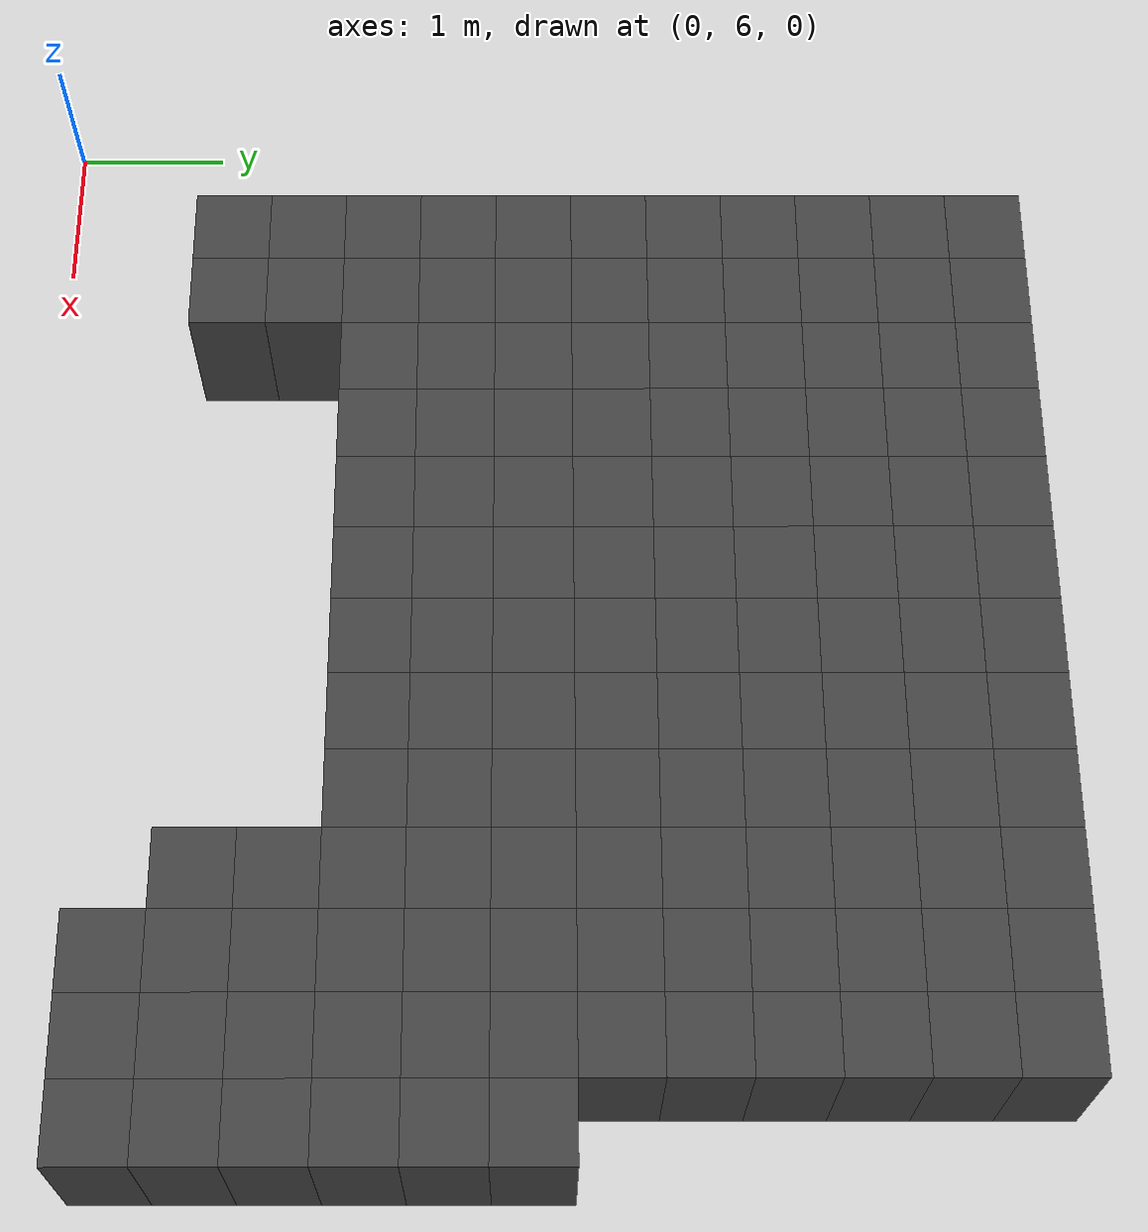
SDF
<sdf version="1.7">
 <world name="map_14495">
  <model name="ground_plane">
   <static>true</static>
   <link name="link">
    <collision name="collision">
     <geometry><plane><normal>0 0 1</normal><size>200 200</size></plane></geometry>
    </collision>
    <visual name="visual">
     <geometry><plane><normal>0 0 1</normal><size>200 200</size></plane></geometry>
     <material><ambient>0.8 0.8 0.8 1</ambient><diffuse>0.8 0.8 0.8 1</diffuse></material>
    </visual>
   </link>
  </model>
  <model name="maze_environment">
   <static>true</static>
   <link name="wall_27">
    <pose>1.250 12.250 0.500 0 0 0</pose>
    <collision name="col"><geometry><box><size>0.5 0.5 1.0</size></box></geometry></collision>
    <visual name="vis">
     <geometry><box><size>0.5 0.5 1.0</size></box></geometry>
     <material><ambient>0.15 0.15 0.15 1</ambient><diffuse>0.25 0.25 0.25 1</diffuse></material>
    </visual>
   </link>
   <link name="wall_28">
    <pose>1.750 12.250 0.500 0 0 0</pose>
    <collision name="col"><geometry><box><size>0.5 0.5 1.0</size></box></geometry></collision>
    <visual name="vis">
     <geometry><box><size>0.5 0.5 1.0</size></box></geometry>
     <material><ambient>0.15 0.15 0.15 1</ambient><diffuse>0.25 0.25 0.25 1</diffuse></material>
    </visual>
   </link>
   <link name="wall_29">
    <pose>2.250 12.250 0.500 0 0 0</pose>
    <collision name="col"><geometry><box><size>0.5 0.5 1.0</size></box></geometry></collision>
    <visual name="vis">
     <geometry><box><size>0.5 0.5 1.0</size></box></geometry>
     <material><ambient>0.15 0.15 0.15 1</ambient><diffuse>0.25 0.25 0.25 1</diffuse></material>
    </visual>
   </link>
   <link name="wall_30">
    <pose>2.750 12.250 0.500 0 0 0</pose>
    <collision name="col"><geometry><box><size>0.5 0.5 1.0</size></box></geometry></collision>
    <visual name="vis">
     <geometry><box><size>0.5 0.5 1.0</size></box></geometry>
     <material><ambient>0.15 0.15 0.15 1</ambient><diffuse>0.25 0.25 0.25 1</diffuse></material>
    </visual>
   </link>
   <link name="wall_31">
    <pose>3.250 12.250 0.500 0 0 0</pose>
    <collision name="col"><geometry><box><size>0.5 0.5 1.0</size></box></geometry></collision>
    <visual name="vis">
     <geometry><box><size>0.5 0.5 1.0</size></box></geometry>
     <material><ambient>0.15 0.15 0.15 1</ambient><diffuse>0.25 0.25 0.25 1</diffuse></material>
    </visual>
   </link>
   <link name="wall_32">
    <pose>3.750 12.250 0.500 0 0 0</pose>
    <collision name="col"><geometry><box><size>0.5 0.5 1.0</size></box></geometry></collision>
    <visual name="vis">
     <geometry><box><size>0.5 0.5 1.0</size></box></geometry>
     <material><ambient>0.15 0.15 0.15 1</ambient><diffuse>0.25 0.25 0.25 1</diffuse></material>
    </visual>
   </link>
   <link name="wall_33">
    <pose>4.250 12.250 0.500 0 0 0</pose>
    <collision name="col"><geometry><box><size>0.5 0.5 1.0</size></box></geometry></collision>
    <visual name="vis">
     <geometry><box><size>0.5 0.5 1.0</size></box></geometry>
     <material><ambient>0.15 0.15 0.15 1</ambient><diffuse>0.25 0.25 0.25 1</diffuse></material>
    </visual>
   </link>
   <link name="wall_34">
    <pose>4.750 12.250 0.500 0 0 0</pose>
    <collision name="col"><geometry><box><size>0.5 0.5 1.0</size></box></geometry></collision>
    <visual name="vis">
     <geometry><box><size>0.5 0.5 1.0</size></box></geometry>
     <material><ambient>0.15 0.15 0.15 1</ambient><diffuse>0.25 0.25 0.25 1</diffuse></material>
    </visual>
   </link>
   <link name="wall_35">
    <pose>5.250 12.250 0.500 0 0 0</pose>
    <collision name="col"><geometry><box><size>0.5 0.5 1.0</size></box></geometry></collision>
    <visual name="vis">
     <geometry><box><size>0.5 0.5 1.0</size></box></geometry>
     <material><ambient>0.15 0.15 0.15 1</ambient><diffuse>0.25 0.25 0.25 1</diffuse></material>
    </visual>
   </link>
   <link name="wall_36">
    <pose>5.750 12.250 0.500 0 0 0</pose>
    <collision name="col"><geometry><box><size>0.5 0.5 1.0</size></box></geometry></collision>
    <visual name="vis">
     <geometry><box><size>0.5 0.5 1.0</size></box></geometry>
     <material><ambient>0.15 0.15 0.15 1</ambient><diffuse>0.25 0.25 0.25 1</diffuse></material>
    </visual>
   </link>
   <link name="wall_37">
    <pose>6.250 12.250 0.500 0 0 0</pose>
    <collision name="col"><geometry><box><size>0.5 0.5 1.0</size></box></geometry></collision>
    <visual name="vis">
     <geometry><box><size>0.5 0.5 1.0</size></box></geometry>
     <material><ambient>0.15 0.15 0.15 1</ambient><diffuse>0.25 0.25 0.25 1</diffuse></material>
    </visual>
   </link>
   <link name="wall_38">
    <pose>6.750 12.250 0.500 0 0 0</pose>
    <collision name="col"><geometry><box><size>0.5 0.5 1.0</size></box></geometry></collision>
    <visual name="vis">
     <geometry><box><size>0.5 0.5 1.0</size></box></geometry>
     <material><ambient>0.15 0.15 0.15 1</ambient><diffuse>0.25 0.25 0.25 1</diffuse></material>
    </visual>
   </link>
   <link name="wall_74">
    <pose>1.250 11.750 0.500 0 0 0</pose>
    <collision name="col"><geometry><box><size>0.5 0.5 1.0</size></box></geometry></collision>
    <visual name="vis">
     <geometry><box><size>0.5 0.5 1.0</size></box></geometry>
     <material><ambient>0.15 0.15 0.15 1</ambient><diffuse>0.25 0.25 0.25 1</diffuse></material>
    </visual>
   </link>
   <link name="wall_75">
    <pose>1.750 11.750 0.500 0 0 0</pose>
    <collision name="col"><geometry><box><size>0.5 0.5 1.0</size></box></geometry></collision>
    <visual name="vis">
     <geometry><box><size>0.5 0.5 1.0</size></box></geometry>
     <material><ambient>0.15 0.15 0.15 1</ambient><diffuse>0.25 0.25 0.25 1</diffuse></material>
    </visual>
   </link>
   <link name="wall_76">
    <pose>2.250 11.750 0.500 0 0 0</pose>
    <collision name="col"><geometry><box><size>0.5 0.5 1.0</size></box></geometry></collision>
    <visual name="vis">
     <geometry><box><size>0.5 0.5 1.0</size></box></geometry>
     <material><ambient>0.15 0.15 0.15 1</ambient><diffuse>0.25 0.25 0.25 1</diffuse></material>
    </visual>
   </link>
   <link name="wall_77">
    <pose>2.750 11.750 0.500 0 0 0</pose>
    <collision name="col"><geometry><box><size>0.5 0.5 1.0</size></box></geometry></collision>
    <visual name="vis">
     <geometry><box><size>0.5 0.5 1.0</size></box></geometry>
     <material><ambient>0.15 0.15 0.15 1</ambient><diffuse>0.25 0.25 0.25 1</diffuse></material>
    </visual>
   </link>
   <link name="wall_78">
    <pose>3.250 11.750 0.500 0 0 0</pose>
    <collision name="col"><geometry><box><size>0.5 0.5 1.0</size></box></geometry></collision>
    <visual name="vis">
     <geometry><box><size>0.5 0.5 1.0</size></box></geometry>
     <material><ambient>0.15 0.15 0.15 1</ambient><diffuse>0.25 0.25 0.25 1</diffuse></material>
    </visual>
   </link>
   <link name="wall_79">
    <pose>3.750 11.750 0.500 0 0 0</pose>
    <collision name="col"><geometry><box><size>0.5 0.5 1.0</size></box></geometry></collision>
    <visual name="vis">
     <geometry><box><size>0.5 0.5 1.0</size></box></geometry>
     <material><ambient>0.15 0.15 0.15 1</ambient><diffuse>0.25 0.25 0.25 1</diffuse></material>
    </visual>
   </link>
   <link name="wall_80">
    <pose>4.250 11.750 0.500 0 0 0</pose>
    <collision name="col"><geometry><box><size>0.5 0.5 1.0</size></box></geometry></collision>
    <visual name="vis">
     <geometry><box><size>0.5 0.5 1.0</size></box></geometry>
     <material><ambient>0.15 0.15 0.15 1</ambient><diffuse>0.25 0.25 0.25 1</diffuse></material>
    </visual>
   </link>
   <link name="wall_81">
    <pose>4.750 11.750 0.500 0 0 0</pose>
    <collision name="col"><geometry><box><size>0.5 0.5 1.0</size></box></geometry></collision>
    <visual name="vis">
     <geometry><box><size>0.5 0.5 1.0</size></box></geometry>
     <material><ambient>0.15 0.15 0.15 1</ambient><diffuse>0.25 0.25 0.25 1</diffuse></material>
    </visual>
   </link>
   <link name="wall_82">
    <pose>5.250 11.750 0.500 0 0 0</pose>
    <collision name="col"><geometry><box><size>0.5 0.5 1.0</size></box></geometry></collision>
    <visual name="vis">
     <geometry><box><size>0.5 0.5 1.0</size></box></geometry>
     <material><ambient>0.15 0.15 0.15 1</ambient><diffuse>0.25 0.25 0.25 1</diffuse></material>
    </visual>
   </link>
   <link name="wall_83">
    <pose>5.750 11.750 0.500 0 0 0</pose>
    <collision name="col"><geometry><box><size>0.5 0.5 1.0</size></box></geometry></collision>
    <visual name="vis">
     <geometry><box><size>0.5 0.5 1.0</size></box></geometry>
     <material><ambient>0.15 0.15 0.15 1</ambient><diffuse>0.25 0.25 0.25 1</diffuse></material>
    </visual>
   </link>
   <link name="wall_84">
    <pose>6.250 11.750 0.500 0 0 0</pose>
    <collision name="col"><geometry><box><size>0.5 0.5 1.0</size></box></geometry></collision>
    <visual name="vis">
     <geometry><box><size>0.5 0.5 1.0</size></box></geometry>
     <material><ambient>0.15 0.15 0.15 1</ambient><diffuse>0.25 0.25 0.25 1</diffuse></material>
    </visual>
   </link>
   <link name="wall_85">
    <pose>6.750 11.750 0.500 0 0 0</pose>
    <collision name="col"><geometry><box><size>0.5 0.5 1.0</size></box></geometry></collision>
    <visual name="vis">
     <geometry><box><size>0.5 0.5 1.0</size></box></geometry>
     <material><ambient>0.15 0.15 0.15 1</ambient><diffuse>0.25 0.25 0.25 1</diffuse></material>
    </visual>
   </link>
   <link name="wall_121">
    <pose>1.250 11.250 0.500 0 0 0</pose>
    <collision name="col"><geometry><box><size>0.5 0.5 1.0</size></box></geometry></collision>
    <visual name="vis">
     <geometry><box><size>0.5 0.5 1.0</size></box></geometry>
     <material><ambient>0.15 0.15 0.15 1</ambient><diffuse>0.25 0.25 0.25 1</diffuse></material>
    </visual>
   </link>
   <link name="wall_122">
    <pose>1.750 11.250 0.500 0 0 0</pose>
    <collision name="col"><geometry><box><size>0.5 0.5 1.0</size></box></geometry></collision>
    <visual name="vis">
     <geometry><box><size>0.5 0.5 1.0</size></box></geometry>
     <material><ambient>0.15 0.15 0.15 1</ambient><diffuse>0.25 0.25 0.25 1</diffuse></material>
    </visual>
   </link>
   <link name="wall_123">
    <pose>2.250 11.250 0.500 0 0 0</pose>
    <collision name="col"><geometry><box><size>0.5 0.5 1.0</size></box></geometry></collision>
    <visual name="vis">
     <geometry><box><size>0.5 0.5 1.0</size></box></geometry>
     <material><ambient>0.15 0.15 0.15 1</ambient><diffuse>0.25 0.25 0.25 1</diffuse></material>
    </visual>
   </link>
   <link name="wall_124">
    <pose>2.750 11.250 0.500 0 0 0</pose>
    <collision name="col"><geometry><box><size>0.5 0.5 1.0</size></box></geometry></collision>
    <visual name="vis">
     <geometry><box><size>0.5 0.5 1.0</size></box></geometry>
     <material><ambient>0.15 0.15 0.15 1</ambient><diffuse>0.25 0.25 0.25 1</diffuse></material>
    </visual>
   </link>
   <link name="wall_125">
    <pose>3.250 11.250 0.500 0 0 0</pose>
    <collision name="col"><geometry><box><size>0.5 0.5 1.0</size></box></geometry></collision>
    <visual name="vis">
     <geometry><box><size>0.5 0.5 1.0</size></box></geometry>
     <material><ambient>0.15 0.15 0.15 1</ambient><diffuse>0.25 0.25 0.25 1</diffuse></material>
    </visual>
   </link>
   <link name="wall_126">
    <pose>3.750 11.250 0.500 0 0 0</pose>
    <collision name="col"><geometry><box><size>0.5 0.5 1.0</size></box></geometry></collision>
    <visual name="vis">
     <geometry><box><size>0.5 0.5 1.0</size></box></geometry>
     <material><ambient>0.15 0.15 0.15 1</ambient><diffuse>0.25 0.25 0.25 1</diffuse></material>
    </visual>
   </link>
   <link name="wall_127">
    <pose>4.250 11.250 0.500 0 0 0</pose>
    <collision name="col"><geometry><box><size>0.5 0.5 1.0</size></box></geometry></collision>
    <visual name="vis">
     <geometry><box><size>0.5 0.5 1.0</size></box></geometry>
     <material><ambient>0.15 0.15 0.15 1</ambient><diffuse>0.25 0.25 0.25 1</diffuse></material>
    </visual>
   </link>
   <link name="wall_128">
    <pose>4.750 11.250 0.500 0 0 0</pose>
    <collision name="col"><geometry><box><size>0.5 0.5 1.0</size></box></geometry></collision>
    <visual name="vis">
     <geometry><box><size>0.5 0.5 1.0</size></box></geometry>
     <material><ambient>0.15 0.15 0.15 1</ambient><diffuse>0.25 0.25 0.25 1</diffuse></material>
    </visual>
   </link>
   <link name="wall_129">
    <pose>5.250 11.250 0.500 0 0 0</pose>
    <collision name="col"><geometry><box><size>0.5 0.5 1.0</size></box></geometry></collision>
    <visual name="vis">
     <geometry><box><size>0.5 0.5 1.0</size></box></geometry>
     <material><ambient>0.15 0.15 0.15 1</ambient><diffuse>0.25 0.25 0.25 1</diffuse></material>
    </visual>
   </link>
   <link name="wall_130">
    <pose>5.750 11.250 0.500 0 0 0</pose>
    <collision name="col"><geometry><box><size>0.5 0.5 1.0</size></box></geometry></collision>
    <visual name="vis">
     <geometry><box><size>0.5 0.5 1.0</size></box></geometry>
     <material><ambient>0.15 0.15 0.15 1</ambient><diffuse>0.25 0.25 0.25 1</diffuse></material>
    </visual>
   </link>
   <link name="wall_131">
    <pose>6.250 11.250 0.500 0 0 0</pose>
    <collision name="col"><geometry><box><size>0.5 0.5 1.0</size></box></geometry></collision>
    <visual name="vis">
     <geometry><box><size>0.5 0.5 1.0</size></box></geometry>
     <material><ambient>0.15 0.15 0.15 1</ambient><diffuse>0.25 0.25 0.25 1</diffuse></material>
    </visual>
   </link>
   <link name="wall_132">
    <pose>6.750 11.250 0.500 0 0 0</pose>
    <collision name="col"><geometry><box><size>0.5 0.5 1.0</size></box></geometry></collision>
    <visual name="vis">
     <geometry><box><size>0.5 0.5 1.0</size></box></geometry>
     <material><ambient>0.15 0.15 0.15 1</ambient><diffuse>0.25 0.25 0.25 1</diffuse></material>
    </visual>
   </link>
   <link name="wall_160">
    <pose>1.250 10.750 0.500 0 0 0</pose>
    <collision name="col"><geometry><box><size>0.5 0.5 1.0</size></box></geometry></collision>
    <visual name="vis">
     <geometry><box><size>0.5 0.5 1.0</size></box></geometry>
     <material><ambient>0.15 0.15 0.15 1</ambient><diffuse>0.25 0.25 0.25 1</diffuse></material>
    </visual>
   </link>
   <link name="wall_161">
    <pose>1.750 10.750 0.500 0 0 0</pose>
    <collision name="col"><geometry><box><size>0.5 0.5 1.0</size></box></geometry></collision>
    <visual name="vis">
     <geometry><box><size>0.5 0.5 1.0</size></box></geometry>
     <material><ambient>0.15 0.15 0.15 1</ambient><diffuse>0.25 0.25 0.25 1</diffuse></material>
    </visual>
   </link>
   <link name="wall_162">
    <pose>2.250 10.750 0.500 0 0 0</pose>
    <collision name="col"><geometry><box><size>0.5 0.5 1.0</size></box></geometry></collision>
    <visual name="vis">
     <geometry><box><size>0.5 0.5 1.0</size></box></geometry>
     <material><ambient>0.15 0.15 0.15 1</ambient><diffuse>0.25 0.25 0.25 1</diffuse></material>
    </visual>
   </link>
   <link name="wall_163">
    <pose>2.750 10.750 0.500 0 0 0</pose>
    <collision name="col"><geometry><box><size>0.5 0.5 1.0</size></box></geometry></collision>
    <visual name="vis">
     <geometry><box><size>0.5 0.5 1.0</size></box></geometry>
     <material><ambient>0.15 0.15 0.15 1</ambient><diffuse>0.25 0.25 0.25 1</diffuse></material>
    </visual>
   </link>
   <link name="wall_164">
    <pose>3.250 10.750 0.500 0 0 0</pose>
    <collision name="col"><geometry><box><size>0.5 0.5 1.0</size></box></geometry></collision>
    <visual name="vis">
     <geometry><box><size>0.5 0.5 1.0</size></box></geometry>
     <material><ambient>0.15 0.15 0.15 1</ambient><diffuse>0.25 0.25 0.25 1</diffuse></material>
    </visual>
   </link>
   <link name="wall_165">
    <pose>3.750 10.750 0.500 0 0 0</pose>
    <collision name="col"><geometry><box><size>0.5 0.5 1.0</size></box></geometry></collision>
    <visual name="vis">
     <geometry><box><size>0.5 0.5 1.0</size></box></geometry>
     <material><ambient>0.15 0.15 0.15 1</ambient><diffuse>0.25 0.25 0.25 1</diffuse></material>
    </visual>
   </link>
   <link name="wall_166">
    <pose>4.250 10.750 0.500 0 0 0</pose>
    <collision name="col"><geometry><box><size>0.5 0.5 1.0</size></box></geometry></collision>
    <visual name="vis">
     <geometry><box><size>0.5 0.5 1.0</size></box></geometry>
     <material><ambient>0.15 0.15 0.15 1</ambient><diffuse>0.25 0.25 0.25 1</diffuse></material>
    </visual>
   </link>
   <link name="wall_167">
    <pose>4.750 10.750 0.500 0 0 0</pose>
    <collision name="col"><geometry><box><size>0.5 0.5 1.0</size></box></geometry></collision>
    <visual name="vis">
     <geometry><box><size>0.5 0.5 1.0</size></box></geometry>
     <material><ambient>0.15 0.15 0.15 1</ambient><diffuse>0.25 0.25 0.25 1</diffuse></material>
    </visual>
   </link>
   <link name="wall_168">
    <pose>5.250 10.750 0.500 0 0 0</pose>
    <collision name="col"><geometry><box><size>0.5 0.5 1.0</size></box></geometry></collision>
    <visual name="vis">
     <geometry><box><size>0.5 0.5 1.0</size></box></geometry>
     <material><ambient>0.15 0.15 0.15 1</ambient><diffuse>0.25 0.25 0.25 1</diffuse></material>
    </visual>
   </link>
   <link name="wall_169">
    <pose>5.750 10.750 0.500 0 0 0</pose>
    <collision name="col"><geometry><box><size>0.5 0.5 1.0</size></box></geometry></collision>
    <visual name="vis">
     <geometry><box><size>0.5 0.5 1.0</size></box></geometry>
     <material><ambient>0.15 0.15 0.15 1</ambient><diffuse>0.25 0.25 0.25 1</diffuse></material>
    </visual>
   </link>
   <link name="wall_170">
    <pose>6.250 10.750 0.500 0 0 0</pose>
    <collision name="col"><geometry><box><size>0.5 0.5 1.0</size></box></geometry></collision>
    <visual name="vis">
     <geometry><box><size>0.5 0.5 1.0</size></box></geometry>
     <material><ambient>0.15 0.15 0.15 1</ambient><diffuse>0.25 0.25 0.25 1</diffuse></material>
    </visual>
   </link>
   <link name="wall_171">
    <pose>6.750 10.750 0.500 0 0 0</pose>
    <collision name="col"><geometry><box><size>0.5 0.5 1.0</size></box></geometry></collision>
    <visual name="vis">
     <geometry><box><size>0.5 0.5 1.0</size></box></geometry>
     <material><ambient>0.15 0.15 0.15 1</ambient><diffuse>0.25 0.25 0.25 1</diffuse></material>
    </visual>
   </link>
   <link name="wall_201">
    <pose>1.250 10.250 0.500 0 0 0</pose>
    <collision name="col"><geometry><box><size>0.5 0.5 1.0</size></box></geometry></collision>
    <visual name="vis">
     <geometry><box><size>0.5 0.5 1.0</size></box></geometry>
     <material><ambient>0.15 0.15 0.15 1</ambient><diffuse>0.25 0.25 0.25 1</diffuse></material>
    </visual>
   </link>
   <link name="wall_202">
    <pose>1.750 10.250 0.500 0 0 0</pose>
    <collision name="col"><geometry><box><size>0.5 0.5 1.0</size></box></geometry></collision>
    <visual name="vis">
     <geometry><box><size>0.5 0.5 1.0</size></box></geometry>
     <material><ambient>0.15 0.15 0.15 1</ambient><diffuse>0.25 0.25 0.25 1</diffuse></material>
    </visual>
   </link>
   <link name="wall_203">
    <pose>2.250 10.250 0.500 0 0 0</pose>
    <collision name="col"><geometry><box><size>0.5 0.5 1.0</size></box></geometry></collision>
    <visual name="vis">
     <geometry><box><size>0.5 0.5 1.0</size></box></geometry>
     <material><ambient>0.15 0.15 0.15 1</ambient><diffuse>0.25 0.25 0.25 1</diffuse></material>
    </visual>
   </link>
   <link name="wall_204">
    <pose>2.750 10.250 0.500 0 0 0</pose>
    <collision name="col"><geometry><box><size>0.5 0.5 1.0</size></box></geometry></collision>
    <visual name="vis">
     <geometry><box><size>0.5 0.5 1.0</size></box></geometry>
     <material><ambient>0.15 0.15 0.15 1</ambient><diffuse>0.25 0.25 0.25 1</diffuse></material>
    </visual>
   </link>
   <link name="wall_205">
    <pose>3.250 10.250 0.500 0 0 0</pose>
    <collision name="col"><geometry><box><size>0.5 0.5 1.0</size></box></geometry></collision>
    <visual name="vis">
     <geometry><box><size>0.5 0.5 1.0</size></box></geometry>
     <material><ambient>0.15 0.15 0.15 1</ambient><diffuse>0.25 0.25 0.25 1</diffuse></material>
    </visual>
   </link>
   <link name="wall_206">
    <pose>3.750 10.250 0.500 0 0 0</pose>
    <collision name="col"><geometry><box><size>0.5 0.5 1.0</size></box></geometry></collision>
    <visual name="vis">
     <geometry><box><size>0.5 0.5 1.0</size></box></geometry>
     <material><ambient>0.15 0.15 0.15 1</ambient><diffuse>0.25 0.25 0.25 1</diffuse></material>
    </visual>
   </link>
   <link name="wall_207">
    <pose>4.250 10.250 0.500 0 0 0</pose>
    <collision name="col"><geometry><box><size>0.5 0.5 1.0</size></box></geometry></collision>
    <visual name="vis">
     <geometry><box><size>0.5 0.5 1.0</size></box></geometry>
     <material><ambient>0.15 0.15 0.15 1</ambient><diffuse>0.25 0.25 0.25 1</diffuse></material>
    </visual>
   </link>
   <link name="wall_208">
    <pose>4.750 10.250 0.500 0 0 0</pose>
    <collision name="col"><geometry><box><size>0.5 0.5 1.0</size></box></geometry></collision>
    <visual name="vis">
     <geometry><box><size>0.5 0.5 1.0</size></box></geometry>
     <material><ambient>0.15 0.15 0.15 1</ambient><diffuse>0.25 0.25 0.25 1</diffuse></material>
    </visual>
   </link>
   <link name="wall_209">
    <pose>5.250 10.250 0.500 0 0 0</pose>
    <collision name="col"><geometry><box><size>0.5 0.5 1.0</size></box></geometry></collision>
    <visual name="vis">
     <geometry><box><size>0.5 0.5 1.0</size></box></geometry>
     <material><ambient>0.15 0.15 0.15 1</ambient><diffuse>0.25 0.25 0.25 1</diffuse></material>
    </visual>
   </link>
   <link name="wall_210">
    <pose>5.750 10.250 0.500 0 0 0</pose>
    <collision name="col"><geometry><box><size>0.5 0.5 1.0</size></box></geometry></collision>
    <visual name="vis">
     <geometry><box><size>0.5 0.5 1.0</size></box></geometry>
     <material><ambient>0.15 0.15 0.15 1</ambient><diffuse>0.25 0.25 0.25 1</diffuse></material>
    </visual>
   </link>
   <link name="wall_211">
    <pose>6.250 10.250 0.500 0 0 0</pose>
    <collision name="col"><geometry><box><size>0.5 0.5 1.0</size></box></geometry></collision>
    <visual name="vis">
     <geometry><box><size>0.5 0.5 1.0</size></box></geometry>
     <material><ambient>0.15 0.15 0.15 1</ambient><diffuse>0.25 0.25 0.25 1</diffuse></material>
    </visual>
   </link>
   <link name="wall_212">
    <pose>6.750 10.250 0.500 0 0 0</pose>
    <collision name="col"><geometry><box><size>0.5 0.5 1.0</size></box></geometry></collision>
    <visual name="vis">
     <geometry><box><size>0.5 0.5 1.0</size></box></geometry>
     <material><ambient>0.15 0.15 0.15 1</ambient><diffuse>0.25 0.25 0.25 1</diffuse></material>
    </visual>
   </link>
   <link name="wall_242">
    <pose>1.250 9.750 0.500 0 0 0</pose>
    <collision name="col"><geometry><box><size>0.5 0.5 1.0</size></box></geometry></collision>
    <visual name="vis">
     <geometry><box><size>0.5 0.5 1.0</size></box></geometry>
     <material><ambient>0.15 0.15 0.15 1</ambient><diffuse>0.25 0.25 0.25 1</diffuse></material>
    </visual>
   </link>
   <link name="wall_243">
    <pose>1.750 9.750 0.500 0 0 0</pose>
    <collision name="col"><geometry><box><size>0.5 0.5 1.0</size></box></geometry></collision>
    <visual name="vis">
     <geometry><box><size>0.5 0.5 1.0</size></box></geometry>
     <material><ambient>0.15 0.15 0.15 1</ambient><diffuse>0.25 0.25 0.25 1</diffuse></material>
    </visual>
   </link>
   <link name="wall_244">
    <pose>2.250 9.750 0.500 0 0 0</pose>
    <collision name="col"><geometry><box><size>0.5 0.5 1.0</size></box></geometry></collision>
    <visual name="vis">
     <geometry><box><size>0.5 0.5 1.0</size></box></geometry>
     <material><ambient>0.15 0.15 0.15 1</ambient><diffuse>0.25 0.25 0.25 1</diffuse></material>
    </visual>
   </link>
   <link name="wall_245">
    <pose>2.750 9.750 0.500 0 0 0</pose>
    <collision name="col"><geometry><box><size>0.5 0.5 1.0</size></box></geometry></collision>
    <visual name="vis">
     <geometry><box><size>0.5 0.5 1.0</size></box></geometry>
     <material><ambient>0.15 0.15 0.15 1</ambient><diffuse>0.25 0.25 0.25 1</diffuse></material>
    </visual>
   </link>
   <link name="wall_246">
    <pose>3.250 9.750 0.500 0 0 0</pose>
    <collision name="col"><geometry><box><size>0.5 0.5 1.0</size></box></geometry></collision>
    <visual name="vis">
     <geometry><box><size>0.5 0.5 1.0</size></box></geometry>
     <material><ambient>0.15 0.15 0.15 1</ambient><diffuse>0.25 0.25 0.25 1</diffuse></material>
    </visual>
   </link>
   <link name="wall_247">
    <pose>3.750 9.750 0.500 0 0 0</pose>
    <collision name="col"><geometry><box><size>0.5 0.5 1.0</size></box></geometry></collision>
    <visual name="vis">
     <geometry><box><size>0.5 0.5 1.0</size></box></geometry>
     <material><ambient>0.15 0.15 0.15 1</ambient><diffuse>0.25 0.25 0.25 1</diffuse></material>
    </visual>
   </link>
   <link name="wall_248">
    <pose>4.250 9.750 0.500 0 0 0</pose>
    <collision name="col"><geometry><box><size>0.5 0.5 1.0</size></box></geometry></collision>
    <visual name="vis">
     <geometry><box><size>0.5 0.5 1.0</size></box></geometry>
     <material><ambient>0.15 0.15 0.15 1</ambient><diffuse>0.25 0.25 0.25 1</diffuse></material>
    </visual>
   </link>
   <link name="wall_249">
    <pose>4.750 9.750 0.500 0 0 0</pose>
    <collision name="col"><geometry><box><size>0.5 0.5 1.0</size></box></geometry></collision>
    <visual name="vis">
     <geometry><box><size>0.5 0.5 1.0</size></box></geometry>
     <material><ambient>0.15 0.15 0.15 1</ambient><diffuse>0.25 0.25 0.25 1</diffuse></material>
    </visual>
   </link>
   <link name="wall_250">
    <pose>5.250 9.750 0.500 0 0 0</pose>
    <collision name="col"><geometry><box><size>0.5 0.5 1.0</size></box></geometry></collision>
    <visual name="vis">
     <geometry><box><size>0.5 0.5 1.0</size></box></geometry>
     <material><ambient>0.15 0.15 0.15 1</ambient><diffuse>0.25 0.25 0.25 1</diffuse></material>
    </visual>
   </link>
   <link name="wall_251">
    <pose>5.750 9.750 0.500 0 0 0</pose>
    <collision name="col"><geometry><box><size>0.5 0.5 1.0</size></box></geometry></collision>
    <visual name="vis">
     <geometry><box><size>0.5 0.5 1.0</size></box></geometry>
     <material><ambient>0.15 0.15 0.15 1</ambient><diffuse>0.25 0.25 0.25 1</diffuse></material>
    </visual>
   </link>
   <link name="wall_252">
    <pose>6.250 9.750 0.500 0 0 0</pose>
    <collision name="col"><geometry><box><size>0.5 0.5 1.0</size></box></geometry></collision>
    <visual name="vis">
     <geometry><box><size>0.5 0.5 1.0</size></box></geometry>
     <material><ambient>0.15 0.15 0.15 1</ambient><diffuse>0.25 0.25 0.25 1</diffuse></material>
    </visual>
   </link>
   <link name="wall_253">
    <pose>6.750 9.750 0.500 0 0 0</pose>
    <collision name="col"><geometry><box><size>0.5 0.5 1.0</size></box></geometry></collision>
    <visual name="vis">
     <geometry><box><size>0.5 0.5 1.0</size></box></geometry>
     <material><ambient>0.15 0.15 0.15 1</ambient><diffuse>0.25 0.25 0.25 1</diffuse></material>
    </visual>
   </link>
   <link name="wall_279">
    <pose>1.250 9.250 0.500 0 0 0</pose>
    <collision name="col"><geometry><box><size>0.5 0.5 1.0</size></box></geometry></collision>
    <visual name="vis">
     <geometry><box><size>0.5 0.5 1.0</size></box></geometry>
     <material><ambient>0.15 0.15 0.15 1</ambient><diffuse>0.25 0.25 0.25 1</diffuse></material>
    </visual>
   </link>
   <link name="wall_280">
    <pose>1.750 9.250 0.500 0 0 0</pose>
    <collision name="col"><geometry><box><size>0.5 0.5 1.0</size></box></geometry></collision>
    <visual name="vis">
     <geometry><box><size>0.5 0.5 1.0</size></box></geometry>
     <material><ambient>0.15 0.15 0.15 1</ambient><diffuse>0.25 0.25 0.25 1</diffuse></material>
    </visual>
   </link>
   <link name="wall_281">
    <pose>2.250 9.250 0.500 0 0 0</pose>
    <collision name="col"><geometry><box><size>0.5 0.5 1.0</size></box></geometry></collision>
    <visual name="vis">
     <geometry><box><size>0.5 0.5 1.0</size></box></geometry>
     <material><ambient>0.15 0.15 0.15 1</ambient><diffuse>0.25 0.25 0.25 1</diffuse></material>
    </visual>
   </link>
   <link name="wall_282">
    <pose>2.750 9.250 0.500 0 0 0</pose>
    <collision name="col"><geometry><box><size>0.5 0.5 1.0</size></box></geometry></collision>
    <visual name="vis">
     <geometry><box><size>0.5 0.5 1.0</size></box></geometry>
     <material><ambient>0.15 0.15 0.15 1</ambient><diffuse>0.25 0.25 0.25 1</diffuse></material>
    </visual>
   </link>
   <link name="wall_283">
    <pose>3.250 9.250 0.500 0 0 0</pose>
    <collision name="col"><geometry><box><size>0.5 0.5 1.0</size></box></geometry></collision>
    <visual name="vis">
     <geometry><box><size>0.5 0.5 1.0</size></box></geometry>
     <material><ambient>0.15 0.15 0.15 1</ambient><diffuse>0.25 0.25 0.25 1</diffuse></material>
    </visual>
   </link>
   <link name="wall_284">
    <pose>3.750 9.250 0.500 0 0 0</pose>
    <collision name="col"><geometry><box><size>0.5 0.5 1.0</size></box></geometry></collision>
    <visual name="vis">
     <geometry><box><size>0.5 0.5 1.0</size></box></geometry>
     <material><ambient>0.15 0.15 0.15 1</ambient><diffuse>0.25 0.25 0.25 1</diffuse></material>
    </visual>
   </link>
   <link name="wall_285">
    <pose>4.250 9.250 0.500 0 0 0</pose>
    <collision name="col"><geometry><box><size>0.5 0.5 1.0</size></box></geometry></collision>
    <visual name="vis">
     <geometry><box><size>0.5 0.5 1.0</size></box></geometry>
     <material><ambient>0.15 0.15 0.15 1</ambient><diffuse>0.25 0.25 0.25 1</diffuse></material>
    </visual>
   </link>
   <link name="wall_286">
    <pose>4.750 9.250 0.500 0 0 0</pose>
    <collision name="col"><geometry><box><size>0.5 0.5 1.0</size></box></geometry></collision>
    <visual name="vis">
     <geometry><box><size>0.5 0.5 1.0</size></box></geometry>
     <material><ambient>0.15 0.15 0.15 1</ambient><diffuse>0.25 0.25 0.25 1</diffuse></material>
    </visual>
   </link>
   <link name="wall_287">
    <pose>5.250 9.250 0.500 0 0 0</pose>
    <collision name="col"><geometry><box><size>0.5 0.5 1.0</size></box></geometry></collision>
    <visual name="vis">
     <geometry><box><size>0.5 0.5 1.0</size></box></geometry>
     <material><ambient>0.15 0.15 0.15 1</ambient><diffuse>0.25 0.25 0.25 1</diffuse></material>
    </visual>
   </link>
   <link name="wall_288">
    <pose>5.750 9.250 0.500 0 0 0</pose>
    <collision name="col"><geometry><box><size>0.5 0.5 1.0</size></box></geometry></collision>
    <visual name="vis">
     <geometry><box><size>0.5 0.5 1.0</size></box></geometry>
     <material><ambient>0.15 0.15 0.15 1</ambient><diffuse>0.25 0.25 0.25 1</diffuse></material>
    </visual>
   </link>
   <link name="wall_289">
    <pose>6.250 9.250 0.500 0 0 0</pose>
    <collision name="col"><geometry><box><size>0.5 0.5 1.0</size></box></geometry></collision>
    <visual name="vis">
     <geometry><box><size>0.5 0.5 1.0</size></box></geometry>
     <material><ambient>0.15 0.15 0.15 1</ambient><diffuse>0.25 0.25 0.25 1</diffuse></material>
    </visual>
   </link>
   <link name="wall_290">
    <pose>6.750 9.250 0.500 0 0 0</pose>
    <collision name="col"><geometry><box><size>0.5 0.5 1.0</size></box></geometry></collision>
    <visual name="vis">
     <geometry><box><size>0.5 0.5 1.0</size></box></geometry>
     <material><ambient>0.15 0.15 0.15 1</ambient><diffuse>0.25 0.25 0.25 1</diffuse></material>
    </visual>
   </link>
   <link name="wall_291">
    <pose>7.250 9.250 0.500 0 0 0</pose>
    <collision name="col"><geometry><box><size>0.5 0.5 1.0</size></box></geometry></collision>
    <visual name="vis">
     <geometry><box><size>0.5 0.5 1.0</size></box></geometry>
     <material><ambient>0.15 0.15 0.15 1</ambient><diffuse>0.25 0.25 0.25 1</diffuse></material>
    </visual>
   </link>
   <link name="wall_317">
    <pose>1.250 8.750 0.500 0 0 0</pose>
    <collision name="col"><geometry><box><size>0.5 0.5 1.0</size></box></geometry></collision>
    <visual name="vis">
     <geometry><box><size>0.5 0.5 1.0</size></box></geometry>
     <material><ambient>0.15 0.15 0.15 1</ambient><diffuse>0.25 0.25 0.25 1</diffuse></material>
    </visual>
   </link>
   <link name="wall_318">
    <pose>1.750 8.750 0.500 0 0 0</pose>
    <collision name="col"><geometry><box><size>0.5 0.5 1.0</size></box></geometry></collision>
    <visual name="vis">
     <geometry><box><size>0.5 0.5 1.0</size></box></geometry>
     <material><ambient>0.15 0.15 0.15 1</ambient><diffuse>0.25 0.25 0.25 1</diffuse></material>
    </visual>
   </link>
   <link name="wall_319">
    <pose>2.250 8.750 0.500 0 0 0</pose>
    <collision name="col"><geometry><box><size>0.5 0.5 1.0</size></box></geometry></collision>
    <visual name="vis">
     <geometry><box><size>0.5 0.5 1.0</size></box></geometry>
     <material><ambient>0.15 0.15 0.15 1</ambient><diffuse>0.25 0.25 0.25 1</diffuse></material>
    </visual>
   </link>
   <link name="wall_320">
    <pose>2.750 8.750 0.500 0 0 0</pose>
    <collision name="col"><geometry><box><size>0.5 0.5 1.0</size></box></geometry></collision>
    <visual name="vis">
     <geometry><box><size>0.5 0.5 1.0</size></box></geometry>
     <material><ambient>0.15 0.15 0.15 1</ambient><diffuse>0.25 0.25 0.25 1</diffuse></material>
    </visual>
   </link>
   <link name="wall_321">
    <pose>3.250 8.750 0.500 0 0 0</pose>
    <collision name="col"><geometry><box><size>0.5 0.5 1.0</size></box></geometry></collision>
    <visual name="vis">
     <geometry><box><size>0.5 0.5 1.0</size></box></geometry>
     <material><ambient>0.15 0.15 0.15 1</ambient><diffuse>0.25 0.25 0.25 1</diffuse></material>
    </visual>
   </link>
   <link name="wall_322">
    <pose>3.750 8.750 0.500 0 0 0</pose>
    <collision name="col"><geometry><box><size>0.5 0.5 1.0</size></box></geometry></collision>
    <visual name="vis">
     <geometry><box><size>0.5 0.5 1.0</size></box></geometry>
     <material><ambient>0.15 0.15 0.15 1</ambient><diffuse>0.25 0.25 0.25 1</diffuse></material>
    </visual>
   </link>
   <link name="wall_323">
    <pose>4.250 8.750 0.500 0 0 0</pose>
    <collision name="col"><geometry><box><size>0.5 0.5 1.0</size></box></geometry></collision>
    <visual name="vis">
     <geometry><box><size>0.5 0.5 1.0</size></box></geometry>
     <material><ambient>0.15 0.15 0.15 1</ambient><diffuse>0.25 0.25 0.25 1</diffuse></material>
    </visual>
   </link>
   <link name="wall_324">
    <pose>4.750 8.750 0.500 0 0 0</pose>
    <collision name="col"><geometry><box><size>0.5 0.5 1.0</size></box></geometry></collision>
    <visual name="vis">
     <geometry><box><size>0.5 0.5 1.0</size></box></geometry>
     <material><ambient>0.15 0.15 0.15 1</ambient><diffuse>0.25 0.25 0.25 1</diffuse></material>
    </visual>
   </link>
   <link name="wall_325">
    <pose>5.250 8.750 0.500 0 0 0</pose>
    <collision name="col"><geometry><box><size>0.5 0.5 1.0</size></box></geometry></collision>
    <visual name="vis">
     <geometry><box><size>0.5 0.5 1.0</size></box></geometry>
     <material><ambient>0.15 0.15 0.15 1</ambient><diffuse>0.25 0.25 0.25 1</diffuse></material>
    </visual>
   </link>
   <link name="wall_326">
    <pose>5.750 8.750 0.500 0 0 0</pose>
    <collision name="col"><geometry><box><size>0.5 0.5 1.0</size></box></geometry></collision>
    <visual name="vis">
     <geometry><box><size>0.5 0.5 1.0</size></box></geometry>
     <material><ambient>0.15 0.15 0.15 1</ambient><diffuse>0.25 0.25 0.25 1</diffuse></material>
    </visual>
   </link>
   <link name="wall_327">
    <pose>6.250 8.750 0.500 0 0 0</pose>
    <collision name="col"><geometry><box><size>0.5 0.5 1.0</size></box></geometry></collision>
    <visual name="vis">
     <geometry><box><size>0.5 0.5 1.0</size></box></geometry>
     <material><ambient>0.15 0.15 0.15 1</ambient><diffuse>0.25 0.25 0.25 1</diffuse></material>
    </visual>
   </link>
   <link name="wall_328">
    <pose>6.750 8.750 0.500 0 0 0</pose>
    <collision name="col"><geometry><box><size>0.5 0.5 1.0</size></box></geometry></collision>
    <visual name="vis">
     <geometry><box><size>0.5 0.5 1.0</size></box></geometry>
     <material><ambient>0.15 0.15 0.15 1</ambient><diffuse>0.25 0.25 0.25 1</diffuse></material>
    </visual>
   </link>
   <link name="wall_329">
    <pose>7.250 8.750 0.500 0 0 0</pose>
    <collision name="col"><geometry><box><size>0.5 0.5 1.0</size></box></geometry></collision>
    <visual name="vis">
     <geometry><box><size>0.5 0.5 1.0</size></box></geometry>
     <material><ambient>0.15 0.15 0.15 1</ambient><diffuse>0.25 0.25 0.25 1</diffuse></material>
    </visual>
   </link>
   <link name="wall_355">
    <pose>1.250 8.250 0.500 0 0 0</pose>
    <collision name="col"><geometry><box><size>0.5 0.5 1.0</size></box></geometry></collision>
    <visual name="vis">
     <geometry><box><size>0.5 0.5 1.0</size></box></geometry>
     <material><ambient>0.15 0.15 0.15 1</ambient><diffuse>0.25 0.25 0.25 1</diffuse></material>
    </visual>
   </link>
   <link name="wall_356">
    <pose>1.750 8.250 0.500 0 0 0</pose>
    <collision name="col"><geometry><box><size>0.5 0.5 1.0</size></box></geometry></collision>
    <visual name="vis">
     <geometry><box><size>0.5 0.5 1.0</size></box></geometry>
     <material><ambient>0.15 0.15 0.15 1</ambient><diffuse>0.25 0.25 0.25 1</diffuse></material>
    </visual>
   </link>
   <link name="wall_357">
    <pose>2.250 8.250 0.500 0 0 0</pose>
    <collision name="col"><geometry><box><size>0.5 0.5 1.0</size></box></geometry></collision>
    <visual name="vis">
     <geometry><box><size>0.5 0.5 1.0</size></box></geometry>
     <material><ambient>0.15 0.15 0.15 1</ambient><diffuse>0.25 0.25 0.25 1</diffuse></material>
    </visual>
   </link>
   <link name="wall_358">
    <pose>2.750 8.250 0.500 0 0 0</pose>
    <collision name="col"><geometry><box><size>0.5 0.5 1.0</size></box></geometry></collision>
    <visual name="vis">
     <geometry><box><size>0.5 0.5 1.0</size></box></geometry>
     <material><ambient>0.15 0.15 0.15 1</ambient><diffuse>0.25 0.25 0.25 1</diffuse></material>
    </visual>
   </link>
   <link name="wall_359">
    <pose>3.250 8.250 0.500 0 0 0</pose>
    <collision name="col"><geometry><box><size>0.5 0.5 1.0</size></box></geometry></collision>
    <visual name="vis">
     <geometry><box><size>0.5 0.5 1.0</size></box></geometry>
     <material><ambient>0.15 0.15 0.15 1</ambient><diffuse>0.25 0.25 0.25 1</diffuse></material>
    </visual>
   </link>
   <link name="wall_360">
    <pose>3.750 8.250 0.500 0 0 0</pose>
    <collision name="col"><geometry><box><size>0.5 0.5 1.0</size></box></geometry></collision>
    <visual name="vis">
     <geometry><box><size>0.5 0.5 1.0</size></box></geometry>
     <material><ambient>0.15 0.15 0.15 1</ambient><diffuse>0.25 0.25 0.25 1</diffuse></material>
    </visual>
   </link>
   <link name="wall_361">
    <pose>4.250 8.250 0.500 0 0 0</pose>
    <collision name="col"><geometry><box><size>0.5 0.5 1.0</size></box></geometry></collision>
    <visual name="vis">
     <geometry><box><size>0.5 0.5 1.0</size></box></geometry>
     <material><ambient>0.15 0.15 0.15 1</ambient><diffuse>0.25 0.25 0.25 1</diffuse></material>
    </visual>
   </link>
   <link name="wall_362">
    <pose>4.750 8.250 0.500 0 0 0</pose>
    <collision name="col"><geometry><box><size>0.5 0.5 1.0</size></box></geometry></collision>
    <visual name="vis">
     <geometry><box><size>0.5 0.5 1.0</size></box></geometry>
     <material><ambient>0.15 0.15 0.15 1</ambient><diffuse>0.25 0.25 0.25 1</diffuse></material>
    </visual>
   </link>
   <link name="wall_363">
    <pose>5.250 8.250 0.500 0 0 0</pose>
    <collision name="col"><geometry><box><size>0.5 0.5 1.0</size></box></geometry></collision>
    <visual name="vis">
     <geometry><box><size>0.5 0.5 1.0</size></box></geometry>
     <material><ambient>0.15 0.15 0.15 1</ambient><diffuse>0.25 0.25 0.25 1</diffuse></material>
    </visual>
   </link>
   <link name="wall_364">
    <pose>5.750 8.250 0.500 0 0 0</pose>
    <collision name="col"><geometry><box><size>0.5 0.5 1.0</size></box></geometry></collision>
    <visual name="vis">
     <geometry><box><size>0.5 0.5 1.0</size></box></geometry>
     <material><ambient>0.15 0.15 0.15 1</ambient><diffuse>0.25 0.25 0.25 1</diffuse></material>
    </visual>
   </link>
   <link name="wall_365">
    <pose>6.250 8.250 0.500 0 0 0</pose>
    <collision name="col"><geometry><box><size>0.5 0.5 1.0</size></box></geometry></collision>
    <visual name="vis">
     <geometry><box><size>0.5 0.5 1.0</size></box></geometry>
     <material><ambient>0.15 0.15 0.15 1</ambient><diffuse>0.25 0.25 0.25 1</diffuse></material>
    </visual>
   </link>
   <link name="wall_366">
    <pose>6.750 8.250 0.500 0 0 0</pose>
    <collision name="col"><geometry><box><size>0.5 0.5 1.0</size></box></geometry></collision>
    <visual name="vis">
     <geometry><box><size>0.5 0.5 1.0</size></box></geometry>
     <material><ambient>0.15 0.15 0.15 1</ambient><diffuse>0.25 0.25 0.25 1</diffuse></material>
    </visual>
   </link>
   <link name="wall_367">
    <pose>7.250 8.250 0.500 0 0 0</pose>
    <collision name="col"><geometry><box><size>0.5 0.5 1.0</size></box></geometry></collision>
    <visual name="vis">
     <geometry><box><size>0.5 0.5 1.0</size></box></geometry>
     <material><ambient>0.15 0.15 0.15 1</ambient><diffuse>0.25 0.25 0.25 1</diffuse></material>
    </visual>
   </link>
   <link name="wall_393">
    <pose>1.250 7.750 0.500 0 0 0</pose>
    <collision name="col"><geometry><box><size>0.5 0.5 1.0</size></box></geometry></collision>
    <visual name="vis">
     <geometry><box><size>0.5 0.5 1.0</size></box></geometry>
     <material><ambient>0.15 0.15 0.15 1</ambient><diffuse>0.25 0.25 0.25 1</diffuse></material>
    </visual>
   </link>
   <link name="wall_394">
    <pose>1.750 7.750 0.500 0 0 0</pose>
    <collision name="col"><geometry><box><size>0.5 0.5 1.0</size></box></geometry></collision>
    <visual name="vis">
     <geometry><box><size>0.5 0.5 1.0</size></box></geometry>
     <material><ambient>0.15 0.15 0.15 1</ambient><diffuse>0.25 0.25 0.25 1</diffuse></material>
    </visual>
   </link>
   <link name="wall_395">
    <pose>5.750 7.750 0.500 0 0 0</pose>
    <collision name="col"><geometry><box><size>0.5 0.5 1.0</size></box></geometry></collision>
    <visual name="vis">
     <geometry><box><size>0.5 0.5 1.0</size></box></geometry>
     <material><ambient>0.15 0.15 0.15 1</ambient><diffuse>0.25 0.25 0.25 1</diffuse></material>
    </visual>
   </link>
   <link name="wall_396">
    <pose>6.250 7.750 0.500 0 0 0</pose>
    <collision name="col"><geometry><box><size>0.5 0.5 1.0</size></box></geometry></collision>
    <visual name="vis">
     <geometry><box><size>0.5 0.5 1.0</size></box></geometry>
     <material><ambient>0.15 0.15 0.15 1</ambient><diffuse>0.25 0.25 0.25 1</diffuse></material>
    </visual>
   </link>
   <link name="wall_397">
    <pose>6.750 7.750 0.500 0 0 0</pose>
    <collision name="col"><geometry><box><size>0.5 0.5 1.0</size></box></geometry></collision>
    <visual name="vis">
     <geometry><box><size>0.5 0.5 1.0</size></box></geometry>
     <material><ambient>0.15 0.15 0.15 1</ambient><diffuse>0.25 0.25 0.25 1</diffuse></material>
    </visual>
   </link>
   <link name="wall_398">
    <pose>7.250 7.750 0.500 0 0 0</pose>
    <collision name="col"><geometry><box><size>0.5 0.5 1.0</size></box></geometry></collision>
    <visual name="vis">
     <geometry><box><size>0.5 0.5 1.0</size></box></geometry>
     <material><ambient>0.15 0.15 0.15 1</ambient><diffuse>0.25 0.25 0.25 1</diffuse></material>
    </visual>
   </link>
   <link name="wall_428">
    <pose>1.250 7.250 0.500 0 0 0</pose>
    <collision name="col"><geometry><box><size>0.5 0.5 1.0</size></box></geometry></collision>
    <visual name="vis">
     <geometry><box><size>0.5 0.5 1.0</size></box></geometry>
     <material><ambient>0.15 0.15 0.15 1</ambient><diffuse>0.25 0.25 0.25 1</diffuse></material>
    </visual>
   </link>
   <link name="wall_429">
    <pose>1.750 7.250 0.500 0 0 0</pose>
    <collision name="col"><geometry><box><size>0.5 0.5 1.0</size></box></geometry></collision>
    <visual name="vis">
     <geometry><box><size>0.5 0.5 1.0</size></box></geometry>
     <material><ambient>0.15 0.15 0.15 1</ambient><diffuse>0.25 0.25 0.25 1</diffuse></material>
    </visual>
   </link>
   <link name="wall_430">
    <pose>5.750 7.250 0.500 0 0 0</pose>
    <collision name="col"><geometry><box><size>0.5 0.5 1.0</size></box></geometry></collision>
    <visual name="vis">
     <geometry><box><size>0.5 0.5 1.0</size></box></geometry>
     <material><ambient>0.15 0.15 0.15 1</ambient><diffuse>0.25 0.25 0.25 1</diffuse></material>
    </visual>
   </link>
   <link name="wall_431">
    <pose>6.250 7.250 0.500 0 0 0</pose>
    <collision name="col"><geometry><box><size>0.5 0.5 1.0</size></box></geometry></collision>
    <visual name="vis">
     <geometry><box><size>0.5 0.5 1.0</size></box></geometry>
     <material><ambient>0.15 0.15 0.15 1</ambient><diffuse>0.25 0.25 0.25 1</diffuse></material>
    </visual>
   </link>
   <link name="wall_432">
    <pose>6.750 7.250 0.500 0 0 0</pose>
    <collision name="col"><geometry><box><size>0.5 0.5 1.0</size></box></geometry></collision>
    <visual name="vis">
     <geometry><box><size>0.5 0.5 1.0</size></box></geometry>
     <material><ambient>0.15 0.15 0.15 1</ambient><diffuse>0.25 0.25 0.25 1</diffuse></material>
    </visual>
   </link>
   <link name="wall_433">
    <pose>7.250 7.250 0.500 0 0 0</pose>
    <collision name="col"><geometry><box><size>0.5 0.5 1.0</size></box></geometry></collision>
    <visual name="vis">
     <geometry><box><size>0.5 0.5 1.0</size></box></geometry>
     <material><ambient>0.15 0.15 0.15 1</ambient><diffuse>0.25 0.25 0.25 1</diffuse></material>
    </visual>
   </link>
   <link name="wall_456">
    <pose>6.250 6.750 0.500 0 0 0</pose>
    <collision name="col"><geometry><box><size>0.5 0.5 1.0</size></box></geometry></collision>
    <visual name="vis">
     <geometry><box><size>0.5 0.5 1.0</size></box></geometry>
     <material><ambient>0.15 0.15 0.15 1</ambient><diffuse>0.25 0.25 0.25 1</diffuse></material>
    </visual>
   </link>
   <link name="wall_457">
    <pose>6.750 6.750 0.500 0 0 0</pose>
    <collision name="col"><geometry><box><size>0.5 0.5 1.0</size></box></geometry></collision>
    <visual name="vis">
     <geometry><box><size>0.5 0.5 1.0</size></box></geometry>
     <material><ambient>0.15 0.15 0.15 1</ambient><diffuse>0.25 0.25 0.25 1</diffuse></material>
    </visual>
   </link>
   <link name="wall_458">
    <pose>7.250 6.750 0.500 0 0 0</pose>
    <collision name="col"><geometry><box><size>0.5 0.5 1.0</size></box></geometry></collision>
    <visual name="vis">
     <geometry><box><size>0.5 0.5 1.0</size></box></geometry>
     <material><ambient>0.15 0.15 0.15 1</ambient><diffuse>0.25 0.25 0.25 1</diffuse></material>
    </visual>
   </link>
  </model>
 </world>
</sdf>
